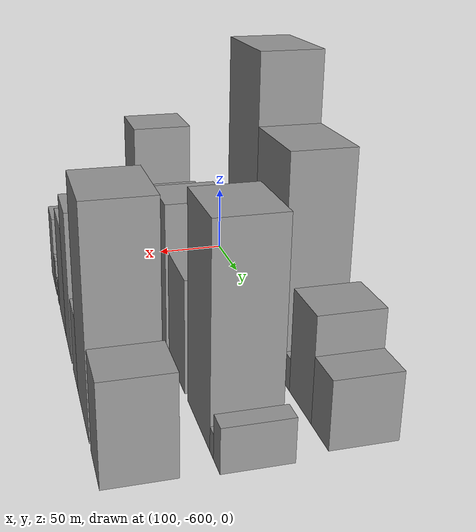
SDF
<sdf version="1.6">
 <world name="default">
  <model name="building_1">
   <static>1</static>
   <pose>100.0000 -574.6569 0 0.000000 0.000000 0.000000</pose>
   <link name="link">
    <pose>0 0 12.00 0 0 0</pose>
    <collision name="collision"><geometry><box><size>40.0000 10.6862 24.0000</size></box></geometry></collision>
    <visual name="visual">
     <cast_shadows>0</cast_shadows>
     <geometry><box><size>40.0000 10.6862 24.0000</size></box></geometry>
     <material>
      <script>
       <uri>model://grey_wall/materials/scripts</uri>
       <uri>model://grey_wall/materials/textures</uri>
       <name>vrc/grey_wall</name>
      </script>
     </material>
    </visual>
   </link>
  </model>
  <model name="building_2">
   <static>1</static>
   <pose>100.0000 -566.2975 0 0.000000 0.000000 0.000000</pose>
   <link name="link">
    <pose>0 0 7.50 0 0 0</pose>
    <collision name="collision"><geometry><box><size>40.0000 6.0326 15.0000</size></box></geometry></collision>
    <visual name="visual">
     <cast_shadows>0</cast_shadows>
     <geometry><box><size>40.0000 6.0326 15.0000</size></box></geometry>
     <material>
      <script>
       <uri>model://grey_wall/materials/scripts</uri>
       <uri>model://grey_wall/materials/textures</uri>
       <name>vrc/grey_wall</name>
      </script>
     </material>
    </visual>
   </link>
  </model>
  <model name="building_3">
   <static>1</static>
   <pose>100.0000 -538.7408 0 0.000000 0.000000 0.000000</pose>
   <link name="link">
    <pose>0 0 27.00 0 0 0</pose>
    <collision name="collision"><geometry><box><size>40.0000 29.0807 54.0000</size></box></geometry></collision>
    <visual name="visual">
     <cast_shadows>0</cast_shadows>
     <geometry><box><size>40.0000 29.0807 54.0000</size></box></geometry>
     <material>
      <script>
       <uri>model://grey_wall/materials/scripts</uri>
       <uri>model://grey_wall/materials/textures</uri>
       <name>vrc/grey_wall</name>
      </script>
     </material>
    </visual>
   </link>
  </model>
  <model name="building_4">
   <static>1</static>
   <pose>100.0000 -512.7264 0 0.000000 0.000000 0.000000</pose>
   <link name="link">
    <pose>0 0 12.00 0 0 0</pose>
    <collision name="collision"><geometry><box><size>40.0000 10.9481 24.0000</size></box></geometry></collision>
    <visual name="visual">
     <cast_shadows>0</cast_shadows>
     <geometry><box><size>40.0000 10.9481 24.0000</size></box></geometry>
     <material>
      <script>
       <uri>model://grey_wall/materials/scripts</uri>
       <uri>model://grey_wall/materials/textures</uri>
       <name>vrc/grey_wall</name>
      </script>
     </material>
    </visual>
   </link>
  </model>
  <model name="building_5">
   <static>1</static>
   <pose>100.0000 -475.8519 0 0.000000 0.000000 0.000000</pose>
   <link name="link">
    <pose>0 0 93.00 0 0 0</pose>
    <collision name="collision"><geometry><box><size>40.0000 62.8010 186.0000</size></box></geometry></collision>
    <visual name="visual">
     <cast_shadows>0</cast_shadows>
     <geometry><box><size>40.0000 62.8010 186.0000</size></box></geometry>
     <material>
      <script>
       <uri>model://grey_wall/materials/scripts</uri>
       <uri>model://grey_wall/materials/textures</uri>
       <name>vrc/grey_wall</name>
      </script>
     </material>
    </visual>
   </link>
  </model>
  <model name="building_6">
   <static>1</static>
   <pose>100.0000 -416.3720 0 0.000000 0.000000 0.000000</pose>
   <link name="link">
    <pose>0 0 70.50 0 0 0</pose>
    <collision name="collision"><geometry><box><size>40.0000 56.1587 141.0000</size></box></geometry></collision>
    <visual name="visual">
     <cast_shadows>0</cast_shadows>
     <geometry><box><size>40.0000 56.1587 141.0000</size></box></geometry>
     <material>
      <script>
       <uri>model://grey_wall/materials/scripts</uri>
       <uri>model://grey_wall/materials/textures</uri>
       <name>vrc/grey_wall</name>
      </script>
     </material>
    </visual>
   </link>
  </model>
  <model name="building_7">
   <static>1</static>
   <pose>100.0000 -378.6573 0 0.000000 0.000000 0.000000</pose>
   <link name="link">
    <pose>0 0 10.50 0 0 0</pose>
    <collision name="collision"><geometry><box><size>40.0000 9.2706 21.0000</size></box></geometry></collision>
    <visual name="visual">
     <cast_shadows>0</cast_shadows>
     <geometry><box><size>40.0000 9.2706 21.0000</size></box></geometry>
     <material>
      <script>
       <uri>model://grey_wall/materials/scripts</uri>
       <uri>model://grey_wall/materials/textures</uri>
       <name>vrc/grey_wall</name>
      </script>
     </material>
    </visual>
   </link>
  </model>
  <model name="building_8">
   <static>1</static>
   <pose>100.0000 -356.5985 0 0.000000 0.000000 0.000000</pose>
   <link name="link">
    <pose>0 0 33.00 0 0 0</pose>
    <collision name="collision"><geometry><box><size>40.0000 34.8471 66.0000</size></box></geometry></collision>
    <visual name="visual">
     <cast_shadows>0</cast_shadows>
     <geometry><box><size>40.0000 34.8471 66.0000</size></box></geometry>
     <material>
      <script>
       <uri>model://grey_wall/materials/scripts</uri>
       <uri>model://grey_wall/materials/textures</uri>
       <name>vrc/grey_wall</name>
      </script>
     </material>
    </visual>
   </link>
  </model>
  <model name="building_9">
   <static>1</static>
   <pose>100.0000 -326.7588 0 0.000000 0.000000 0.000000</pose>
   <link name="link">
    <pose>0 0 21.00 0 0 0</pose>
    <collision name="collision"><geometry><box><size>40.0000 24.8324 42.0000</size></box></geometry></collision>
    <visual name="visual">
     <cast_shadows>0</cast_shadows>
     <geometry><box><size>40.0000 24.8324 42.0000</size></box></geometry>
     <material>
      <script>
       <uri>model://grey_wall/materials/scripts</uri>
       <uri>model://grey_wall/materials/textures</uri>
       <name>vrc/grey_wall</name>
      </script>
     </material>
    </visual>
   </link>
  </model>
  <model name="building_36">
   <static>1</static>
   <pose>160.0000 -559.1905 0 0.000000 0.000000 0.000000</pose>
   <link name="link">
    <pose>0 0 60.00 0 0 0</pose>
    <collision name="collision"><geometry><box><size>40.0000 41.6189 120.0000</size></box></geometry></collision>
    <visual name="visual">
     <cast_shadows>0</cast_shadows>
     <geometry><box><size>40.0000 41.6189 120.0000</size></box></geometry>
     <material>
      <script>
       <uri>model://grey_wall/materials/scripts</uri>
       <uri>model://grey_wall/materials/textures</uri>
       <name>vrc/grey_wall</name>
      </script>
     </material>
    </visual>
   </link>
  </model>
  <model name="building_37">
   <static>1</static>
   <pose>160.0000 -533.4944 0 0.000000 0.000000 0.000000</pose>
   <link name="link">
    <pose>0 0 10.50 0 0 0</pose>
    <collision name="collision"><geometry><box><size>40.0000 9.7734 21.0000</size></box></geometry></collision>
    <visual name="visual">
     <cast_shadows>0</cast_shadows>
     <geometry><box><size>40.0000 9.7734 21.0000</size></box></geometry>
     <material>
      <script>
       <uri>model://grey_wall/materials/scripts</uri>
       <uri>model://grey_wall/materials/textures</uri>
       <name>vrc/grey_wall</name>
      </script>
     </material>
    </visual>
   </link>
  </model>
  <model name="building_38">
   <static>1</static>
   <pose>160.0000 -501.9712 0 0.000000 0.000000 0.000000</pose>
   <link name="link">
    <pose>0 0 42.00 0 0 0</pose>
    <collision name="collision"><geometry><box><size>40.0000 43.2729 84.0000</size></box></geometry></collision>
    <visual name="visual">
     <cast_shadows>0</cast_shadows>
     <geometry><box><size>40.0000 43.2729 84.0000</size></box></geometry>
     <material>
      <script>
       <uri>model://grey_wall/materials/scripts</uri>
       <uri>model://grey_wall/materials/textures</uri>
       <name>vrc/grey_wall</name>
      </script>
     </material>
    </visual>
   </link>
  </model>
  <model name="building_39">
   <static>1</static>
   <pose>160.0000 -455.4450 0 0.000000 0.000000 0.000000</pose>
   <link name="link">
    <pose>0 0 49.50 0 0 0</pose>
    <collision name="collision"><geometry><box><size>40.0000 37.7795 99.0000</size></box></geometry></collision>
    <visual name="visual">
     <cast_shadows>0</cast_shadows>
     <geometry><box><size>40.0000 37.7795 99.0000</size></box></geometry>
     <material>
      <script>
       <uri>model://grey_wall/materials/scripts</uri>
       <uri>model://grey_wall/materials/textures</uri>
       <name>vrc/grey_wall</name>
      </script>
     </material>
    </visual>
   </link>
  </model>
  <model name="building_40">
   <static>1</static>
   <pose>160.0000 -407.1859 0 0.000000 0.000000 0.000000</pose>
   <link name="link">
    <pose>0 0 36.00 0 0 0</pose>
    <collision name="collision"><geometry><box><size>40.0000 42.7385 72.0000</size></box></geometry></collision>
    <visual name="visual">
     <cast_shadows>0</cast_shadows>
     <geometry><box><size>40.0000 42.7385 72.0000</size></box></geometry>
     <material>
      <script>
       <uri>model://grey_wall/materials/scripts</uri>
       <uri>model://grey_wall/materials/textures</uri>
       <name>vrc/grey_wall</name>
      </script>
     </material>
    </visual>
   </link>
  </model>
  <model name="building_41">
   <static>1</static>
   <pose>160.0000 -353.3660 0 0.000000 0.000000 0.000000</pose>
   <link name="link">
    <pose>0 0 64.50 0 0 0</pose>
    <collision name="collision"><geometry><box><size>40.0000 48.9014 129.0000</size></box></geometry></collision>
    <visual name="visual">
     <cast_shadows>0</cast_shadows>
     <geometry><box><size>40.0000 48.9014 129.0000</size></box></geometry>
     <material>
      <script>
       <uri>model://grey_wall/materials/scripts</uri>
       <uri>model://grey_wall/materials/textures</uri>
       <name>vrc/grey_wall</name>
      </script>
     </material>
    </visual>
   </link>
  </model>
  <model name="building_42">
   <static>1</static>
   <pose>160.0000 -325.3410 0 0.000000 0.000000 0.000000</pose>
   <link name="link">
    <pose>0 0 7.50 0 0 0</pose>
    <collision name="collision"><geometry><box><size>40.0000 7.1487 15.0000</size></box></geometry></collision>
    <visual name="visual">
     <cast_shadows>0</cast_shadows>
     <geometry><box><size>40.0000 7.1487 15.0000</size></box></geometry>
     <material>
      <script>
       <uri>model://grey_wall/materials/scripts</uri>
       <uri>model://grey_wall/materials/textures</uri>
       <name>vrc/grey_wall</name>
      </script>
     </material>
    </visual>
   </link>
  </model>
  <model name="building_43">
   <static>1</static>
   <pose>160.0000 -315.4543 0 0.000000 0.000000 0.000000</pose>
   <link name="link">
    <pose>0 0 13.50 0 0 0</pose>
    <collision name="collision"><geometry><box><size>40.0000 12.6245 27.0000</size></box></geometry></collision>
    <visual name="visual">
     <cast_shadows>0</cast_shadows>
     <geometry><box><size>40.0000 12.6245 27.0000</size></box></geometry>
     <material>
      <script>
       <uri>model://grey_wall/materials/scripts</uri>
       <uri>model://grey_wall/materials/textures</uri>
       <name>vrc/grey_wall</name>
      </script>
     </material>
    </visual>
   </link>
  </model>
  <model name="building_72">
   <static>1</static>
   <pose>220.0000 -565.2903 0 0.000000 0.000000 0.000000</pose>
   <link name="link">
    <pose>0 0 27.00 0 0 0</pose>
    <collision name="collision"><geometry><box><size>40.0000 29.4194 54.0000</size></box></geometry></collision>
    <visual name="visual">
     <cast_shadows>0</cast_shadows>
     <geometry><box><size>40.0000 29.4194 54.0000</size></box></geometry>
     <material>
      <script>
       <uri>model://grey_wall/materials/scripts</uri>
       <uri>model://grey_wall/materials/textures</uri>
       <name>vrc/grey_wall</name>
      </script>
     </material>
    </visual>
   </link>
  </model>
  <model name="building_73">
   <static>1</static>
   <pose>220.0000 -543.8800 0 0.000000 0.000000 0.000000</pose>
   <link name="link">
    <pose>0 0 13.50 0 0 0</pose>
    <collision name="collision"><geometry><box><size>40.0000 13.4012 27.0000</size></box></geometry></collision>
    <visual name="visual">
     <cast_shadows>0</cast_shadows>
     <geometry><box><size>40.0000 13.4012 27.0000</size></box></geometry>
     <material>
      <script>
       <uri>model://grey_wall/materials/scripts</uri>
       <uri>model://grey_wall/materials/textures</uri>
       <name>vrc/grey_wall</name>
      </script>
     </material>
    </visual>
   </link>
  </model>
  <model name="building_74">
   <static>1</static>
   <pose>220.0000 -525.1029 0 0.000000 0.000000 0.000000</pose>
   <link name="link">
    <pose>0 0 9.00 0 0 0</pose>
    <collision name="collision"><geometry><box><size>40.0000 8.1531 18.0000</size></box></geometry></collision>
    <visual name="visual">
     <cast_shadows>0</cast_shadows>
     <geometry><box><size>40.0000 8.1531 18.0000</size></box></geometry>
     <material>
      <script>
       <uri>model://grey_wall/materials/scripts</uri>
       <uri>model://grey_wall/materials/textures</uri>
       <name>vrc/grey_wall</name>
      </script>
     </material>
    </visual>
   </link>
  </model>
  <model name="building_75">
   <static>1</static>
   <pose>220.0000 -493.5593 0 0.000000 0.000000 0.000000</pose>
   <link name="link">
    <pose>0 0 37.50 0 0 0</pose>
    <collision name="collision"><geometry><box><size>40.0000 42.9341 75.0000</size></box></geometry></collision>
    <visual name="visual">
     <cast_shadows>0</cast_shadows>
     <geometry><box><size>40.0000 42.9341 75.0000</size></box></geometry>
     <material>
      <script>
       <uri>model://grey_wall/materials/scripts</uri>
       <uri>model://grey_wall/materials/textures</uri>
       <name>vrc/grey_wall</name>
      </script>
     </material>
    </visual>
   </link>
  </model>
  <model name="building_76">
   <static>1</static>
   <pose>220.0000 -454.1300 0 0.000000 0.000000 0.000000</pose>
   <link name="link">
    <pose>0 0 49.50 0 0 0</pose>
    <collision name="collision"><geometry><box><size>40.0000 35.9245 99.0000</size></box></geometry></collision>
    <visual name="visual">
     <cast_shadows>0</cast_shadows>
     <geometry><box><size>40.0000 35.9245 99.0000</size></box></geometry>
     <material>
      <script>
       <uri>model://grey_wall/materials/scripts</uri>
       <uri>model://grey_wall/materials/textures</uri>
       <name>vrc/grey_wall</name>
      </script>
     </material>
    </visual>
   </link>
  </model>
  <model name="building_77">
   <static>1</static>
   <pose>220.0000 -415.3616 0 0.000000 0.000000 0.000000</pose>
   <link name="link">
    <pose>0 0 24.00 0 0 0</pose>
    <collision name="collision"><geometry><box><size>40.0000 25.6124 48.0000</size></box></geometry></collision>
    <visual name="visual">
     <cast_shadows>0</cast_shadows>
     <geometry><box><size>40.0000 25.6124 48.0000</size></box></geometry>
     <material>
      <script>
       <uri>model://grey_wall/materials/scripts</uri>
       <uri>model://grey_wall/materials/textures</uri>
       <name>vrc/grey_wall</name>
      </script>
     </material>
    </visual>
   </link>
  </model>
  <model name="building_78">
   <static>1</static>
   <pose>220.0000 -376.4548 0 0.000000 0.000000 0.000000</pose>
   <link name="link">
    <pose>0 0 67.50 0 0 0</pose>
    <collision name="collision"><geometry><box><size>40.0000 52.2012 135.0000</size></box></geometry></collision>
    <visual name="visual">
     <cast_shadows>0</cast_shadows>
     <geometry><box><size>40.0000 52.2012 135.0000</size></box></geometry>
     <material>
      <script>
       <uri>model://grey_wall/materials/scripts</uri>
       <uri>model://grey_wall/materials/textures</uri>
       <name>vrc/grey_wall</name>
      </script>
     </material>
    </visual>
   </link>
  </model>
  <model name="building_79">
   <static>1</static>
   <pose>220.0000 -327.3299 0 0.000000 0.000000 0.000000</pose>
   <link name="link">
    <pose>0 0 30.00 0 0 0</pose>
    <collision name="collision"><geometry><box><size>40.0000 32.0486 60.0000</size></box></geometry></collision>
    <visual name="visual">
     <cast_shadows>0</cast_shadows>
     <geometry><box><size>40.0000 32.0486 60.0000</size></box></geometry>
     <material>
      <script>
       <uri>model://grey_wall/materials/scripts</uri>
       <uri>model://grey_wall/materials/textures</uri>
       <name>vrc/grey_wall</name>
      </script>
     </material>
    </visual>
   </link>
  </model>
 </world>
</sdf>
